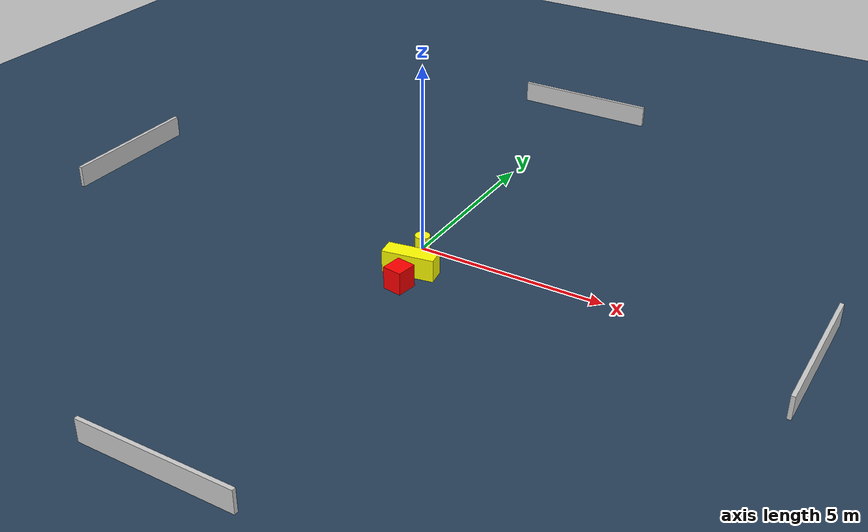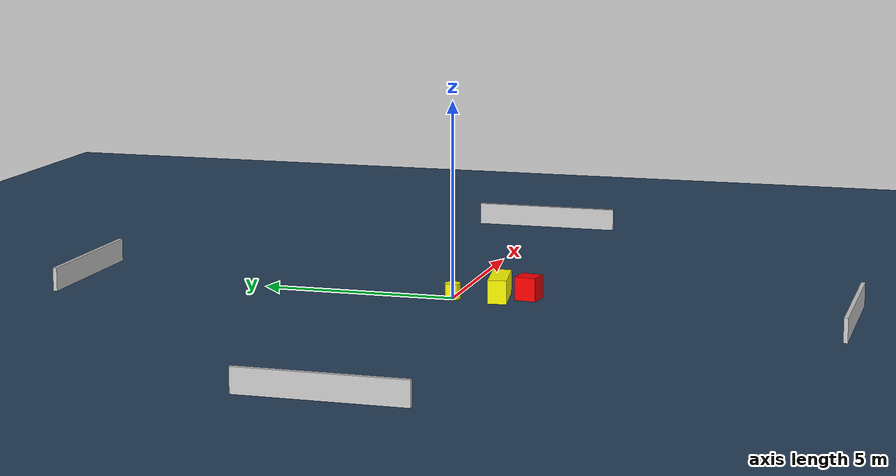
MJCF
<?xml version="1.0" ?>
<mujoco model="generated_environment">
  <option timestep="0.01" integrator="RK4" cone="elliptic"/>
  <default>
    <geom density="1"/>
  </default>
  <asset>
    <texture builtin="gradient" height="3072" name="skybox" rgb1="0.3 0.5 0.7" rgb2="0 0 0" type="skybox" width="512"/>
    <texture builtin="checker" height="300" name="groundplane" rgb1="0.2 0.3 0.4" rgb2="0.1 0.2 0.3" type="2d" width="300"/>
    <material name="groundplane" reflectance="0.2" texrepeat="5 5" texture="groundplane"/>
  </asset>
  <worldbody>
    <light dir="0 0 -1" directional="true" pos="0 0 1.5"/>
    <geom condim="3" friction="0.5 0.005 0.001" material="groundplane" name="floor" pos="0 0 0" size="0 0 0.05" type="plane"/>
    <body name="walls">
      <geom name="wall_1" condim="4" pos="-10.0 0.0 0.3" rgba="0.800000011920929 0.800000011920929 0.800000011920929 1.0" size="0.05 2.0 0.3" type="box"/>
      <geom name="wall_2" condim="4" pos="10.0 0.0 0.3" rgba="0.800000011920929 0.800000011920929 0.800000011920929 1.0" size="0.05 2.0 0.3" type="box"/>
      <geom name="wall_3" condim="4" pos="0.0 -10.0 0.3" rgba="0.800000011920929 0.800000011920929 0.800000011920929 1.0" size="2.0 0.05 0.3" type="box"/>
      <geom name="wall_4" condim="4" pos="0.0 10.0 0.3" rgba="0.800000011920929 0.800000011920929 0.800000011920929 1.0" size="2.0 0.05 0.3" type="box"/>
    </body>
    <body name="robot">
      <joint name="joint_x" type="slide" pos="0 0 0" axis="1 0 0"/>
      <joint name="joint_y" type="slide" pos="0 0 0" axis="0 1 0"/>
      <geom name="robot" type="cylinder" pos="0.0 0.0 0.2" size="0.2 0.2 0.0" mass="5.0" friction="1.0 0.005 0.0001" condim="4" rgba="1.0 1.0 0.0 1.0"/>
    </body>
    <body name="obstacle_1_movable">
      <geom name="obstacle_1_movable" condim="4" pos="0.33898192392953375 -1.129234360506472 0.3" euler="0 0 189.17746666742156" friction="0.0 0.005 0.001" rgba="1.0 1.0 0.0 1.0" size="0.6795310202604952 0.2385734519401485 0.3" type="box" mass="0.1"/>
      <joint type="free"/>
    </body>
    <body name="obstacle_2_static">
      <geom name="obstacle_2_static" condim="4" pos="0.4513207797457919 -1.8534162897660182 0.3" euler="0 0 80.96579127381287" friction="0.0 0.005 0.001" rgba="1.0 0.0 0.0 1.0" size="0.27647105566620234 0.2587031651950978 0.3" type="box"/>
    </body>
  </worldbody>
  <actuator>
    <motor name="actuator_x" joint="joint_x" gear="1" ctrlrange="-1 1"/>
    <motor name="actuator_y" joint="joint_y" gear="1" ctrlrange="-1 1"/>
  </actuator>
</mujoco>
